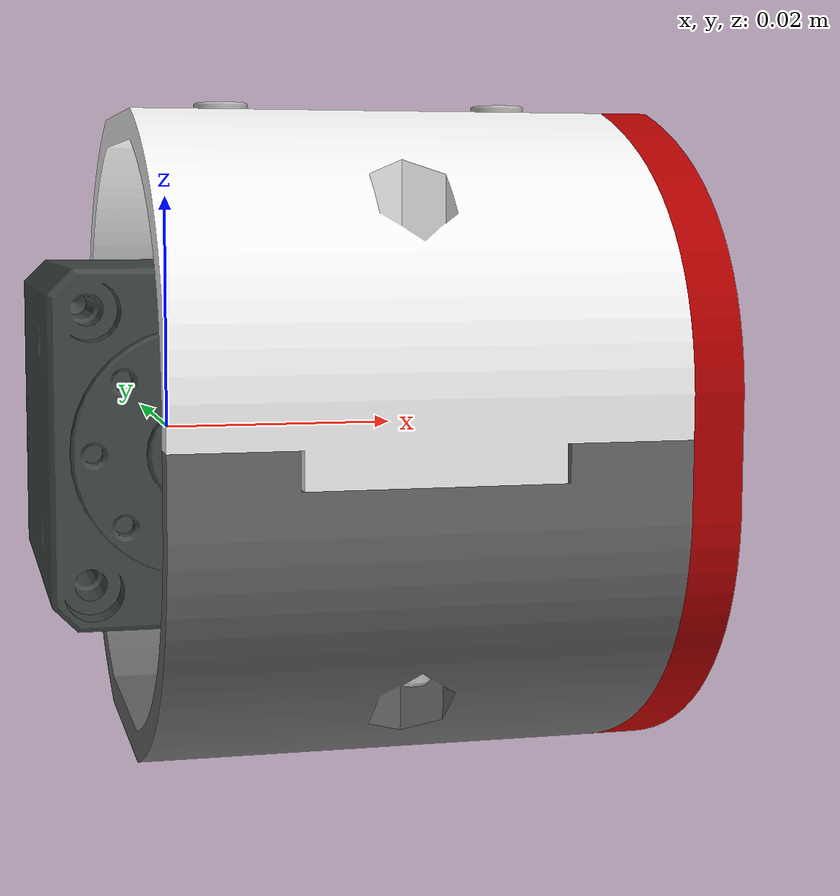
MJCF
<mujoco model="head">
  <default>
    <default class="visual">
      <geom group="2" type="mesh" contype="0" conaffinity="0"/>
    </default>
    <default class="collision">
      <geom group="3" type="mesh"/>
    </default>
  </default>
  <asset>
    <material name="105,105,105" specular="0.0" shininess="0.300000031" rgba="0.411765 0.411765 0.411765 1.000000"/>
    <material name="178,0,0" specular="1.0" shininess="1.0" rgba="0.698039 0.000000 0.000000 1.000000"/>
    <material name="190,188,186" specular="0.7372549999999999" shininess="1.0" rgba="0.745098 0.737255 0.729412 1.000000"/>
    <material name="245,245,245" specular="1.0" shininess="1.0" rgba="0.960784 0.960784 0.960784 1.000000"/>
    <material name="64,72,70" specular="0.269281" shininess="1.0" rgba="0.250980 0.282353 0.274510 1.000000"/>
    <mesh file="head_0.obj"/>
    <mesh file="head_1.obj"/>
    <mesh file="head_2.obj"/>
    <mesh file="head_3.obj"/>
    <mesh file="head_4.obj"/>
  </asset>
  <worldbody>
    <body name="head">
      <geom mesh="head_0" material="190,188,186" class="visual"/>
      <geom mesh="head_1" material="178,0,0" class="visual"/>
      <geom mesh="head_2" material="245,245,245" class="visual"/>
      <geom mesh="head_3" material="105,105,105" class="visual"/>
      <geom mesh="head_4" material="64,72,70" class="visual"/>
      <geom mesh="head_0" class="collision"/>
      <geom mesh="head_1" class="collision"/>
      <geom mesh="head_2" class="collision"/>
      <geom mesh="head_3" class="collision"/>
      <geom mesh="head_4" class="collision"/>
    </body>
  </worldbody>
</mujoco>
